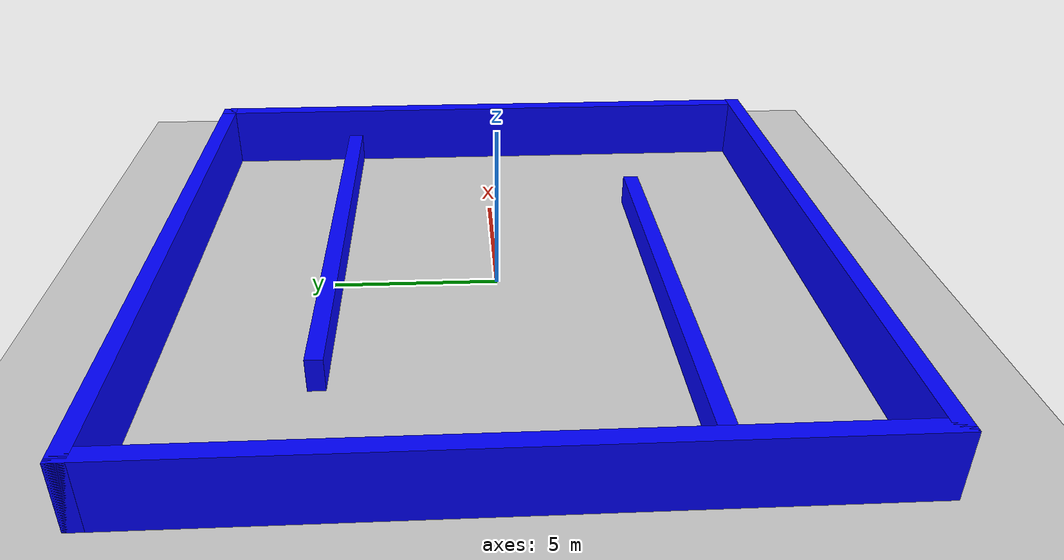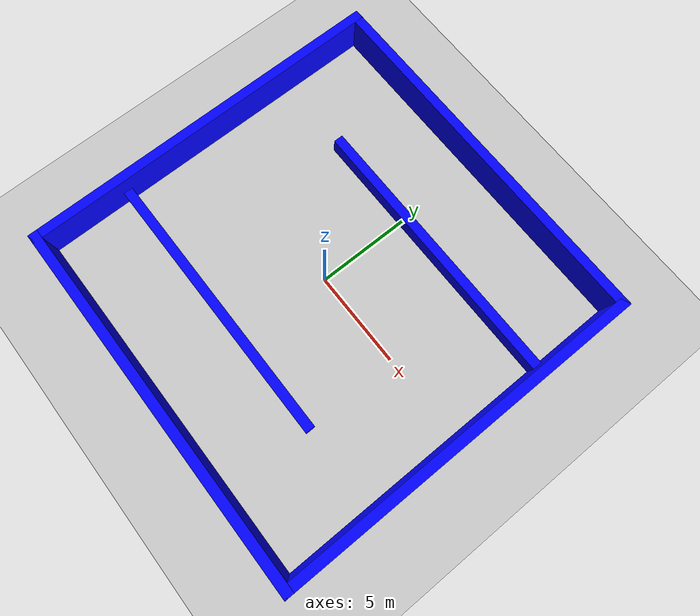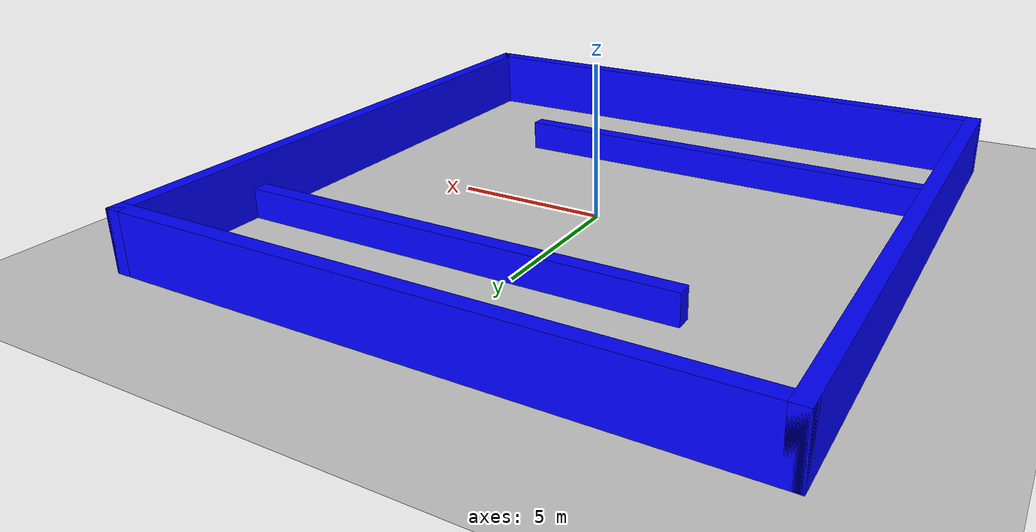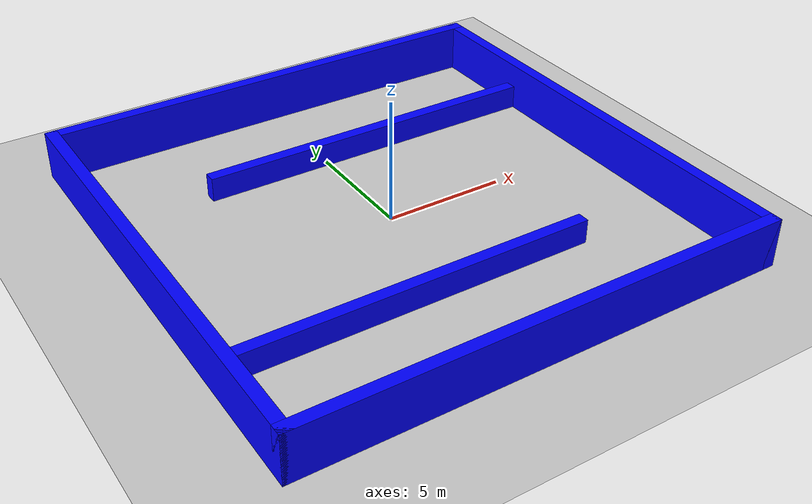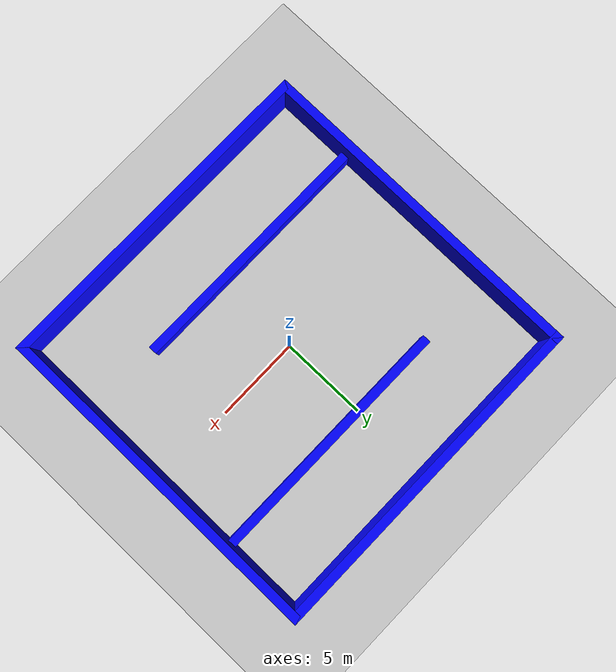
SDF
<sdf version='1.10'>
  <world name='empty'>
    <physics name='1ms' type='ignored'>
      <max_step_size>0.001</max_step_size>
      <real_time_factor>1</real_time_factor>
      <real_time_update_rate>1000</real_time_update_rate>
    </physics>
    <plugin name='gz::sim::systems::Physics' filename='gz-sim-physics-system'/>
    <plugin name='gz::sim::systems::UserCommands' filename='gz-sim-user-commands-system'/>
    <plugin name='gz::sim::systems::SceneBroadcaster' filename='gz-sim-scene-broadcaster-system'/>
    <plugin name='gz::sim::systems::Contact' filename='gz-sim-contact-system'/>
    <gravity>0 0 -9.8000000000000007</gravity>
    <magnetic_field>5.5644999999999998e-06 2.2875799999999999e-05 -4.2388400000000002e-05</magnetic_field>
    <atmosphere type='adiabatic'/>
    <scene>
      <ambient>0.400000006 0.400000006 0.400000006 1</ambient>
      <background>0.699999988 0.699999988 0.699999988 1</background>
      <shadows>true</shadows>
    </scene>
    <model name='ground_plane'>
      <static>true</static>
      <link name='link'>
        <collision name='collision'>
          <geometry>
            <plane>
              <normal>0 0 1</normal>
              <size>100 100</size>
            </plane>
          </geometry>
          <surface>
            <friction>
              <ode/>
            </friction>
            <bounce/>
            <contact/>
          </surface>
        </collision>
        <visual name='visual'>
          <geometry>
            <plane>
              <normal>0 0 1</normal>
              <size>100 100</size>
            </plane>
          </geometry>
          <material>
            <ambient>0.800000012 0.800000012 0.800000012 1</ambient>
            <diffuse>0.800000012 0.800000012 0.800000012 1</diffuse>
            <specular>0.800000012 0.800000012 0.800000012 1</specular>
          </material>
        </visual>
        <pose>0 0 0 0 0 0</pose>
        <inertial>
          <pose>0 0 0 0 0 0</pose>
          <mass>1</mass>
          <inertia>
            <ixx>1</ixx>
            <ixy>0</ixy>
            <ixz>0</ixz>
            <iyy>1</iyy>
            <iyz>0</iyz>
            <izz>1</izz>
          </inertia>
        </inertial>
        <enable_wind>false</enable_wind>
      </link>
      <pose>0 0 0 0 0 0</pose>
      <self_collide>false</self_collide>
    </model>

    <!--Boundary Walls-->
    <model name='outer_wall_0'>
        <static>true</static>
        <pose>9.75 0 1 0 0 0</pose>
        <link name='box'>
            <pose/>
            <inertial>
                <mass>1.14395</mass>
                <inertia>
                    <ixx>9.532917</ixx>
                    <ixy>0</ixy>
                    <ixz>0</ixz>
                    <iyy>0.023832</iyy>
                    <iyz>0</iyz>
                    <izz>9.556749</izz>
                </inertia>
            </inertial>
            <visual name='visual'>
                <geometry>
                    <box>
                        <size>0.5 20.0 2.0</size>
                    </box>
                </geometry>
                <material>
                    <ambient>0.0 0.0 1.0 1</ambient>
                    <diffuse>0.0 0.0 1.0 1</diffuse>
                    <specular>0.0 0.0 1.0 1</specular>
                </material>
            </visual>
            <collision name='collision'>
                <geometry>
                    <box>
                        <size>0.5 20.0 2.0</size>
                    </box>
                </geometry>
            </collision>
        </link>
    </model>

    <model name='outer_wall_1'>
        <static>true</static>
        <pose>-9.75 0 1 0 0 0</pose>
        <link name='box'>
            <pose/>
            <inertial>
                <mass>1.14395</mass>
                <inertia>
                    <ixx>9.532917</ixx>
                    <ixy>0</ixy>
                    <ixz>0</ixz>
                    <iyy>0.023832</iyy>
                    <iyz>0</iyz>
                    <izz>9.556749</izz>
                </inertia>
            </inertial>
            <visual name='visual'>
                <geometry>
                    <box>
                        <size>0.5 20.0 2.0</size>
                    </box>
                </geometry>
                <material>
                    <ambient>0.0 0.0 1.0 1</ambient>
                    <diffuse>0.0 0.0 1.0 1</diffuse>
                    <specular>0.0 0.0 1.0 1</specular>
                </material>
            </visual>
            <collision name='collision'>
                <geometry>
                    <box>
                        <size>0.5 20.0 2.0</size>
                    </box>
                </geometry>
            </collision>
        </link>
    </model>

    <model name='outer_wall_2'>
        <static>true</static>
        <pose>0 9.75 1 0 0 0</pose>
        <link name='box'>
            <pose/>
            <inertial>
                <mass>1.14395</mass>
                <inertia>
                    <ixx>9.532917</ixx>
                    <ixy>0</ixy>
                    <ixz>0</ixz>
                    <iyy>0.023832</iyy>
                    <iyz>0</iyz>
                    <izz>9.556749</izz>
                </inertia>
            </inertial>
            <visual name='visual'>
                <geometry>
                    <box>
                        <size>20.0 0.5 2.0</size>
                    </box>
                </geometry>
                <material>
                    <ambient>0.0 0.0 1.0 1</ambient>
                    <diffuse>0.0 0.0 1.0 1</diffuse>
                    <specular>0.0 0.0 1.0 1</specular>
                </material>
            </visual>
            <collision name='collision'>
                <geometry>
                    <box>
                        <size>20.0 0.5 2.0</size>
                    </box>
                </geometry>
            </collision>
        </link>
    </model>

    <model name='outer_wall_3'>
        <static>true</static>
        <pose>0 -9.75 1 0 0 0</pose>
        <link name='box'>
            <pose/>
            <inertial>
                <mass>1.14395</mass>
                <inertia>
                    <ixx>9.532917</ixx>
                    <ixy>0</ixy>
                    <ixz>0</ixz>
                    <iyy>0.023832</iyy>
                    <iyz>0</iyz>
                    <izz>9.556749</izz>
                </inertia>
            </inertial>
            <visual name='visual'>
                <geometry>
                    <box>
                        <size>20.0 0.5 2.0</size>
                    </box>
                </geometry>
                <material>
                    <ambient>0.0 0.0 1.0 1</ambient>
                    <diffuse>0.0 0.0 1.0 1</diffuse>
                    <specular>0.0 0.0 1.0 1</specular>
                </material>
            </visual>
            <collision name='collision'>
                <geometry>
                    <box>
                        <size>20.0 0.5 2.0</size>
                    </box>
                </geometry>
            </collision>
        </link>
    </model>

    <model name='interior_wall_0'>
        <static>true</static>
        <pose>2.25 5 0.5 0 0 0</pose>
        <link name='box'>
            <pose/>
            <inertial>
                <mass>1.14395</mass>
                <inertia>
                    <ixx>9.532917</ixx>
                    <ixy>0</ixy>
                    <ixz>0</ixz>
                    <iyy>0.023832</iyy>
                    <iyz>0</iyz>
                    <izz>9.556749</izz>
                </inertia>
            </inertial>
            <visual name='visual'>
                <geometry>
                    <box>
                        <size>15.0 0.5 1.0</size>
                    </box>
                </geometry>
                <material>
                    <ambient>0.0 0.0 1.0 1</ambient>
                    <diffuse>0.0 0.0 1.0 1</diffuse>
                    <specular>0.0 0.0 1.0 1</specular>
                </material>
            </visual>
            <collision name='collision'>
                <geometry>
                    <box>
                        <size>5.0 0.5 2.0</size>
                    </box>
                </geometry>
            </collision>
        </link>
    </model>

    <model name='interior_wall_1'>
        <static>true</static>
        <pose>-2.25 -5 0.5 0 0 0</pose>
        <link name='box'>
            <pose/>
            <inertial>
                <mass>1.14395</mass>
                <inertia>
                    <ixx>9.532917</ixx>
                    <ixy>0</ixy>
                    <ixz>0</ixz>
                    <iyy>0.023832</iyy>
                    <iyz>0</iyz>
                    <izz>9.556749</izz>
                </inertia>
            </inertial>
            <visual name='visual'>
                <geometry>
                    <box>
                        <size>15.0 0.5 1.0</size>
                    </box>
                </geometry>
                <material>
                    <ambient>0.0 0.0 1.0 1</ambient>
                    <diffuse>0.0 0.0 1.0 1</diffuse>
                    <specular>0.0 0.0 1.0 1</specular>
                </material>
            </visual>
            <collision name='collision'>
                <geometry>
                    <box>
                        <size>5.0 0.5 2.0</size>
                    </box>
                </geometry>
            </collision>
        </link>
    </model>

    <light name='sun' type='directional'>
      <pose>0 0 10 0 0 0</pose>
      <cast_shadows>true</cast_shadows>
      <intensity>1</intensity>
      <direction>-0.5 0.10000000000000001 -0.90000000000000002</direction>
      <diffuse>0.800000012 0.800000012 0.800000012 1</diffuse>
      <specular>0.200000003 0.200000003 0.200000003 1</specular>
      <attenuation>
        <range>1000</range>
        <linear>0.0099999997764825821</linear>
        <constant>0.89999997615814209</constant>
        <quadratic>0.0010000000474974513</quadratic>
      </attenuation>
      <spot>
        <inner_angle>0</inner_angle>
        <outer_angle>0</outer_angle>
        <falloff>0</falloff>
      </spot>
    </light>
  </world>
</sdf>
